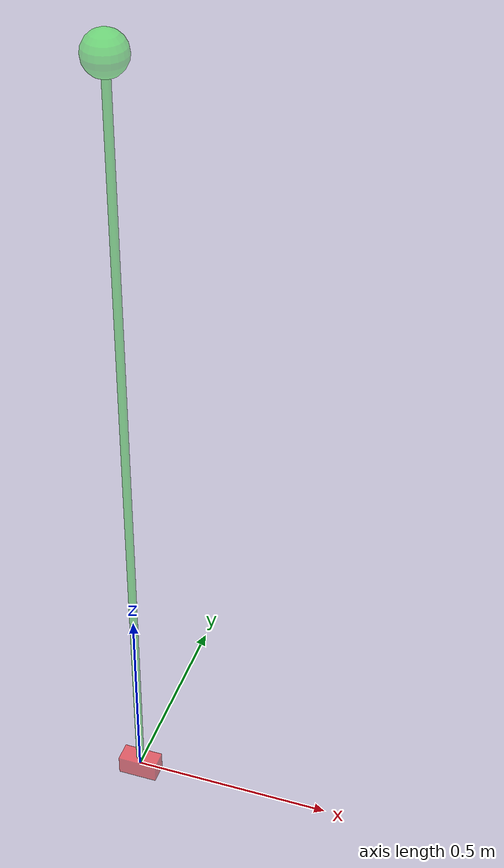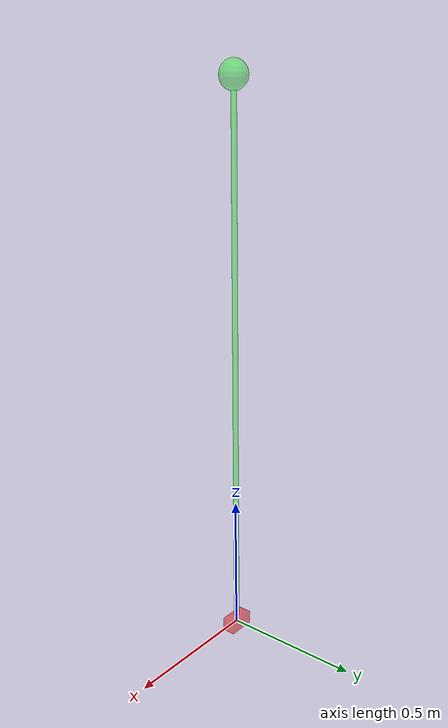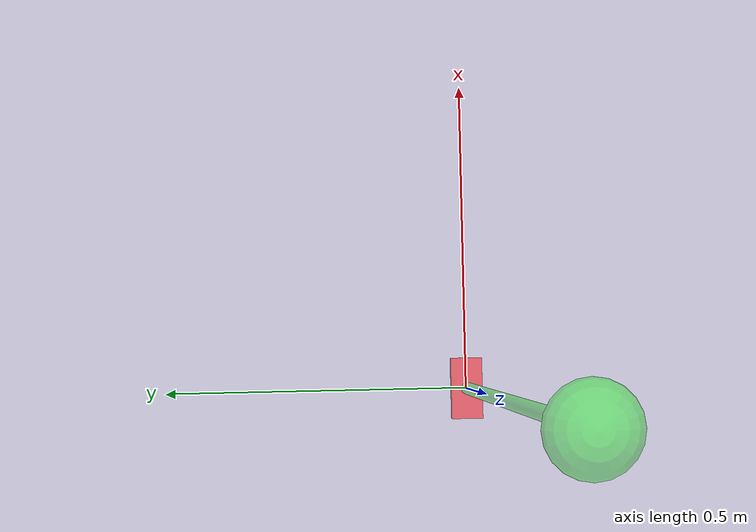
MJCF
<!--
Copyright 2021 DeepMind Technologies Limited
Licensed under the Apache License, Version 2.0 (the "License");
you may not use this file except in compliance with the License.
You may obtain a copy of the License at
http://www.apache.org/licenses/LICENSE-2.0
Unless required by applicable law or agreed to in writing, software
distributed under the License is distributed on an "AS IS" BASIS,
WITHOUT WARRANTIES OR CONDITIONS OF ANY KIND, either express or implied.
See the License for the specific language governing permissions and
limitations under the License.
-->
<mujoco model="inverted_pendulum">
  <option collision="all" integrator = "RK4" />

  <visual>
    <rgba haze=".3 .3 .3 1"/>
  </visual>
  <asset>
    <texture type="skybox" builtin="gradient" rgb1="0.6 0.6 0.6" rgb2="0 0 0" width="512" height="512"/>
    <texture name="texplane" type="2d" builtin="checker" rgb1=".25 .25 .25" rgb2=".3 .3 .3" width="512" height="512" mark="cross" markrgb=".8 .8 .8"/>
    <material name="matplane" reflectance="0.3" texture="texplane" texrepeat="1 1" texuniform="true"/>
  </asset>

  <worldbody>
    <light directional="true" diffuse=".8 .8 .8" specular=".2 .2 .2" pos="5 0 0" dir="-1 0 0"/>
    <light directional="true" diffuse=".8 .8 .8" specular=".2 .2 .2" pos="0 0 5" dir="0 0 -1"/>

    <body name="link1" pos="0 0 0">
      <joint name= "slider1" type="slide" pos="0 0 0" axis="1 0 0" damping="0." />
      <geom name="link1geo" type="box" size="0.05 0.025 0.025 " rgba="1 .0 0 0.5"/>

      <body name="link2" pos="0 0 0">
        <joint name= "pivot2" type="hinge" pos="0 0 0" axis="0 1 0"/>
        <geom name="link2cyl" type="cylinder" size="0.01" fromto="0 0 0  0 0 2" rgba="0 1 0 .4"/>
        <geom name="link2sph" type="sphere" pos="0 0 2" size="0.05" rgba="0 1 0 .4"/>
      </body>
    </body>

  </worldbody>

  <actuator>
    <general name="slidermotor" joint="slider1" forcelimited="false" ctrllimited="false"/>
  </actuator>

  <contact>
    <exclude body1="world" body2="link1"/>
    <exclude body1="link1" body2="link2"/>
  </contact>

</mujoco>
